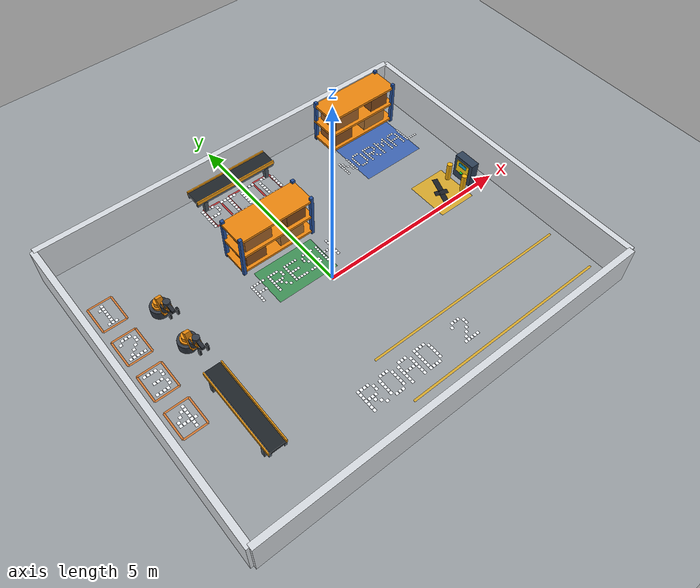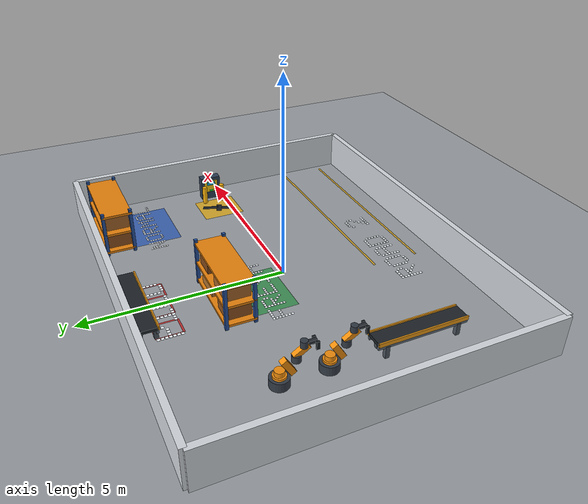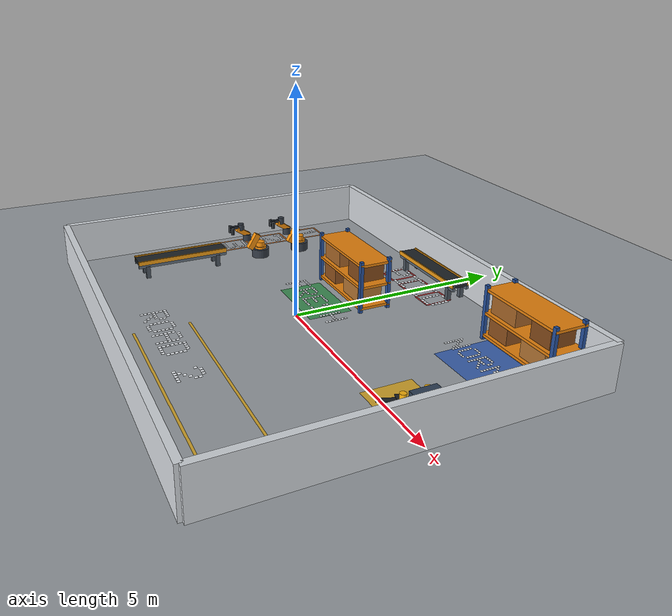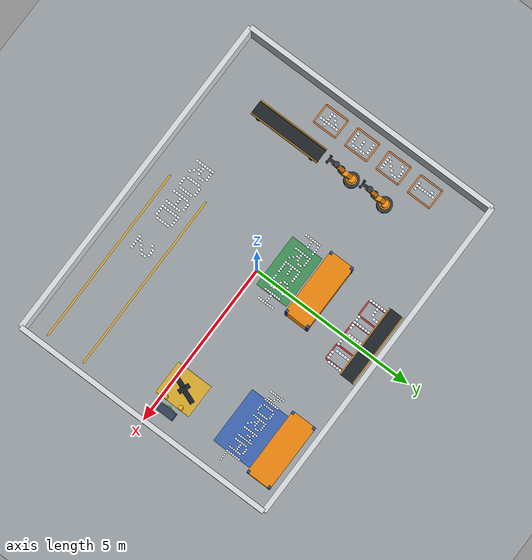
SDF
<?xml version="1.0"?>
<sdf version="1.8">
  <world name="mentorpi_warehouse">
    <physics name="1ms" type="ignored">
      <max_step_size>0.001</max_step_size>
      <real_time_factor>1.0</real_time_factor>
    </physics>

    <plugin filename="gz-sim-physics-system"
            name="gz::sim::systems::Physics"/>
    <plugin filename="gz-sim-user-commands-system"
            name="gz::sim::systems::UserCommands"/>
    <plugin filename="gz-sim-scene-broadcaster-system"
            name="gz::sim::systems::SceneBroadcaster"/>
    <plugin filename="gz-sim-sensors-system"
            name="gz::sim::systems::Sensors">
      <render_engine>ogre2</render_engine>
    </plugin>
    <plugin filename="gz-sim-imu-system"
            name="gz::sim::systems::Imu"/>
    <scene>
      <ambient>0.62 0.64 0.68 1</ambient>
      <background>0.72 0.80 0.88 1</background>
      <shadows>true</shadows>
    </scene>
    <light name="sun" type="directional">
      <cast_shadows>true</cast_shadows>
      <pose>0 0 8 0 0 0</pose>
      <diffuse>0.92 0.92 0.90 1</diffuse>
      <specular>0.25 0.25 0.25 1</specular>
      <attenuation>
        <range>30</range>
        <constant>0.9</constant>
        <linear>0.01</linear>
        <quadratic>0.001</quadratic>
      </attenuation>
      <direction>-0.35 0.25 -1</direction>
    </light>

    <model name="ground">
      <static>true</static>
      <link name="ground_link">
        <collision name="ground_collision">
          <geometry>
            <plane>
              <normal>0 0 1</normal>
              <size>12 10</size>
            </plane>
          </geometry>
          <surface>
            <friction>
              <ode>
                <mu>50</mu>
                <mu2>50</mu2>
              </ode>
            </friction>
          </surface>
        </collision>
        <visual name="ground_visual">
          <geometry>
            <plane>
              <normal>0 0 1</normal>
              <size>12 10</size>
            </plane>
          </geometry>
          <material>
            <ambient>0.48 0.50 0.52 1</ambient>
            <diffuse>0.60 0.62 0.64 1</diffuse>
            <specular>0.08 0.08 0.08 1</specular>
          </material>
        </visual>
      </link>
    </model>

    <model name="warehouse_walls">
      <static>true</static>
      <link name="walls">
        <collision name="north">
          <pose>0 4 0.5 0 0 0</pose>
          <geometry><box><size>10 0.15 1</size></box></geometry>
        </collision>
        <visual name="north_visual">
          <pose>0 4 0.5 0 0 0</pose>
          <geometry><box><size>10 0.15 1</size></box></geometry>
          <material><diffuse>0.84 0.86 0.88 1</diffuse></material>
        </visual>
        <collision name="south">
          <pose>0 -4 0.5 0 0 0</pose>
          <geometry><box><size>10 0.15 1</size></box></geometry>
        </collision>
        <visual name="south_visual">
          <pose>0 -4 0.5 0 0 0</pose>
          <geometry><box><size>10 0.15 1</size></box></geometry>
          <material><diffuse>0.84 0.86 0.88 1</diffuse></material>
        </visual>
        <collision name="east">
          <pose>5 0 0.5 0 0 0</pose>
          <geometry><box><size>0.15 8 1</size></box></geometry>
        </collision>
        <visual name="east_visual">
          <pose>5 0 0.5 0 0 0</pose>
          <geometry><box><size>0.15 8 1</size></box></geometry>
          <material><diffuse>0.84 0.86 0.88 1</diffuse></material>
        </visual>
        <collision name="west">
          <pose>-5 0 0.5 0 0 0</pose>
          <geometry><box><size>0.15 8 1</size></box></geometry>
        </collision>
        <visual name="west_visual">
          <pose>-5 0 0.5 0 0 0</pose>
          <geometry><box><size>0.15 8 1</size></box></geometry>
          <material><diffuse>0.84 0.86 0.88 1</diffuse></material>
        </visual>
      </link>
    </model>

    <include>
      <uri>model://warehouse_conveyor</uri>
      <name>left_conveyor</name>
      <pose>-3.45 -1.55 0 0 0 1.5708</pose>
    </include>
    <include>
      <uri>model://warehouse_conveyor</uri>
      <name>pico_conveyor</name>
      <pose>-0.20 3.64 0 0 0 0</pose>
    </include>

    <include>
      <uri>model://warehouse_robot_arm</uri>
      <name>robot_arm_upper</name>
      <pose>-3.45 1.65 0 0 0 -1.5708</pose>
    </include>
    <include>
      <uri>model://warehouse_robot_arm</uri>
      <name>robot_arm_lower</name>
      <pose>-3.45 0.55 0 0 0 -1.5708</pose>
    </include>

    <include>
      <uri>model://warehouse_charger</uri>
      <name>charging_station</name>
      <pose>4.45 0.35 0 0 0 1.5708</pose>
    </include>

    <include>
      <uri>model://warehouse_rack</uri>
      <name>fresh_rack</name>
      <pose>-0.50 1.67 0 0 0 0</pose>
    </include>
    <include>
      <uri>model://warehouse_rack</uri>
      <name>normal_rack</name>
      <pose>3.45 3.40 0 0 0 0</pose>
    </include>

    <include>
      <uri>model://warehouse_markings</uri>
      <name>floor_markings</name>
      <pose>0 0 0 0 0 0</pose>
    </include>

    <plugin filename="mentorpi_warehouse_pallet_manager"
            name="mentorpi_gz_sim::WarehousePalletManager">
      <command_service>/warehouse/pallet/command</command_service>
      <template_dir>pallet</template_dir>
      <spawn_bounds>-4.5 4.5 -3.5 3.5</spawn_bounds>
      <default_spawn_pose>-2.5 -2.8 0 0 0 0</default_spawn_pose>
      <linear_stop_threshold>0.02</linear_stop_threshold>
      <angular_stop_threshold>0.05</angular_stop_threshold>
      <default_pallet id="pallet_01" kind="fresh" state="loaded"
                      pose="-1.0 0.6 0 0 0 0"/>
      <default_pallet id="pallet_02" kind="fresh" state="loaded"
                      pose="-0.5 0.6 0 0 0 0"/>
      <default_pallet id="pallet_03" kind="fresh" state="loaded"
                      pose="0.0 0.6 0 0 0 0"/>
      <default_pallet id="pallet_04" kind="normal" state="loaded"
                      pose="2.9 2.4 0 0 0 0"/>
      <default_pallet id="pallet_05" kind="normal" state="loaded"
                      pose="3.4 2.4 0 0 0 0"/>
      <default_pallet id="pallet_06" kind="normal" state="loaded"
                      pose="3.9 2.4 0 0 0 0"/>
    </plugin>
  </world>
</sdf>

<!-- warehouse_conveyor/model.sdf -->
<sdf version="1.8">
  <model name="warehouse_conveyor">
    <static>true</static>
    <link name="conveyor">
      <collision name="conveyor_envelope">
        <pose>0 0 0.225 0 0 0</pose>
        <geometry>
          <box>
            <size>2.2 0.45 0.45</size>
          </box>
        </geometry>
      </collision>

      <visual name="belt">
        <pose>0 0 0.39 0 0 0</pose>
        <geometry>
          <box>
            <size>2.2 0.36 0.08</size>
          </box>
        </geometry>
        <material>
          <ambient>0.08 0.10 0.12 1</ambient>
          <diffuse>0.12 0.14 0.16 1</diffuse>
          <specular>0.25 0.25 0.25 1</specular>
        </material>
      </visual>
      <visual name="left_guard">
        <pose>0 0.215 0.40 0 0 0</pose>
        <geometry>
          <box>
            <size>2.2 0.03 0.10</size>
          </box>
        </geometry>
        <material>
          <ambient>0.85 0.50 0.05 1</ambient>
          <diffuse>0.95 0.62 0.08 1</diffuse>
        </material>
      </visual>
      <visual name="right_guard">
        <pose>0 -0.215 0.40 0 0 0</pose>
        <geometry>
          <box>
            <size>2.2 0.03 0.10</size>
          </box>
        </geometry>
        <material>
          <ambient>0.85 0.50 0.05 1</ambient>
          <diffuse>0.95 0.62 0.08 1</diffuse>
        </material>
      </visual>
      <visual name="frame_left">
        <pose>0 0.18 0.31 0 0 0</pose>
        <geometry>
          <box>
            <size>2.2 0.06 0.08</size>
          </box>
        </geometry>
        <material>
          <ambient>0.24 0.28 0.31 1</ambient>
          <diffuse>0.38 0.43 0.48 1</diffuse>
        </material>
      </visual>
      <visual name="frame_right">
        <pose>0 -0.18 0.31 0 0 0</pose>
        <geometry>
          <box>
            <size>2.2 0.06 0.08</size>
          </box>
        </geometry>
        <material>
          <ambient>0.24 0.28 0.31 1</ambient>
          <diffuse>0.38 0.43 0.48 1</diffuse>
        </material>
      </visual>
      <visual name="leg_front_left">
        <pose>0.88 0.17 0.15 0 0 0</pose>
        <geometry>
          <box>
            <size>0.10 0.10 0.30</size>
          </box>
        </geometry>
        <material>
          <diffuse>0.30 0.34 0.38 1</diffuse>
        </material>
      </visual>
      <visual name="leg_front_right">
        <pose>0.88 -0.17 0.15 0 0 0</pose>
        <geometry>
          <box>
            <size>0.10 0.10 0.30</size>
          </box>
        </geometry>
        <material>
          <diffuse>0.30 0.34 0.38 1</diffuse>
        </material>
      </visual>
      <visual name="leg_rear_left">
        <pose>-0.88 0.17 0.15 0 0 0</pose>
        <geometry>
          <box>
            <size>0.10 0.10 0.30</size>
          </box>
        </geometry>
        <material>
          <diffuse>0.30 0.34 0.38 1</diffuse>
        </material>
      </visual>
      <visual name="leg_rear_right">
        <pose>-0.88 -0.17 0.15 0 0 0</pose>
        <geometry>
          <box>
            <size>0.10 0.10 0.30</size>
          </box>
        </geometry>
        <material>
          <diffuse>0.30 0.34 0.38 1</diffuse>
        </material>
      </visual>
    </link>
  </model>
</sdf>

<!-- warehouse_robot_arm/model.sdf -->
<sdf version="1.8">
  <model name="warehouse_robot_arm">
    <static>true</static>
    <link name="base_link">
      <collision name="base_collision">
        <pose>0 0 0.11 0 0 0</pose>
        <geometry>
          <cylinder>
            <radius>0.22</radius>
            <length>0.22</length>
          </cylinder>
        </geometry>
      </collision>
      <visual name="base">
        <pose>0 0 0.11 0 0 0</pose>
        <geometry>
          <cylinder>
            <radius>0.22</radius>
            <length>0.22</length>
          </cylinder>
        </geometry>
        <material>
          <ambient>0.12 0.14 0.17 1</ambient>
          <diffuse>0.20 0.23 0.27 1</diffuse>
        </material>
      </visual>
      <visual name="turntable">
        <pose>0 0 0.235 0 0 0</pose>
        <geometry>
          <cylinder>
            <radius>0.15</radius>
            <length>0.08</length>
          </cylinder>
        </geometry>
        <material>
          <ambient>0.85 0.45 0.03 1</ambient>
          <diffuse>0.95 0.56 0.05 1</diffuse>
        </material>
      </visual>
    </link>

    <link name="shoulder_link">
      <pose>0 0 0.30 0 0 0</pose>
      <collision name="shoulder_collision">
        <pose>0.18 0 0.12 0 1.02 0</pose>
        <geometry>
          <box>
            <size>0.42 0.14 0.14</size>
          </box>
        </geometry>
      </collision>
      <visual name="shoulder_joint">
        <geometry>
          <cylinder>
            <radius>0.11</radius>
            <length>0.18</length>
          </cylinder>
        </geometry>
        <material>
          <diffuse>0.95 0.56 0.05 1</diffuse>
        </material>
      </visual>
      <visual name="shoulder_body">
        <pose>0.18 0 0.12 0 1.02 0</pose>
        <geometry>
          <box>
            <size>0.42 0.14 0.14</size>
          </box>
        </geometry>
        <material>
          <diffuse>0.95 0.56 0.05 1</diffuse>
        </material>
      </visual>
    </link>

    <link name="forearm_link">
      <pose>0.36 0 0.57 0 0 0</pose>
      <collision name="forearm_collision">
        <pose>0.10 0 0.15 0 -0.58 0</pose>
        <geometry>
          <box>
            <size>0.38 0.12 0.12</size>
          </box>
        </geometry>
      </collision>
      <visual name="elbow_joint">
        <geometry>
          <cylinder>
            <radius>0.10</radius>
            <length>0.16</length>
          </cylinder>
        </geometry>
        <material>
          <diffuse>0.20 0.23 0.27 1</diffuse>
        </material>
      </visual>
      <visual name="forearm_body">
        <pose>0.10 0 0.15 0 -0.58 0</pose>
        <geometry>
          <box>
            <size>0.38 0.12 0.12</size>
          </box>
        </geometry>
        <material>
          <diffuse>0.95 0.56 0.05 1</diffuse>
        </material>
      </visual>
    </link>

    <link name="tool_link">
      <pose>0.52 0 0.87 0 0 0</pose>
      <collision name="tool_collision">
        <geometry>
          <box>
            <size>0.34 0.18 0.10</size>
          </box>
        </geometry>
      </collision>
      <visual name="wrist">
        <geometry>
          <cylinder>
            <radius>0.08</radius>
            <length>0.16</length>
          </cylinder>
        </geometry>
        <material>
          <diffuse>0.20 0.23 0.27 1</diffuse>
        </material>
      </visual>
      <visual name="gripper_bar">
        <pose>0.13 0 0 0 0 0</pose>
        <geometry>
          <box>
            <size>0.28 0.08 0.07</size>
          </box>
        </geometry>
        <material>
          <diffuse>0.15 0.17 0.20 1</diffuse>
        </material>
      </visual>
      <visual name="gripper_left">
        <pose>0.25 0.09 -0.06 0 0 0</pose>
        <geometry>
          <box>
            <size>0.07 0.05 0.18</size>
          </box>
        </geometry>
        <material>
          <diffuse>0.10 0.12 0.14 1</diffuse>
        </material>
      </visual>
      <visual name="gripper_right">
        <pose>0.25 -0.09 -0.06 0 0 0</pose>
        <geometry>
          <box>
            <size>0.07 0.05 0.18</size>
          </box>
        </geometry>
        <material>
          <diffuse>0.10 0.12 0.14 1</diffuse>
        </material>
      </visual>
    </link>

    <joint name="base_to_shoulder" type="fixed">
      <parent>base_link</parent>
      <child>shoulder_link</child>
    </joint>
    <joint name="shoulder_to_forearm" type="fixed">
      <parent>shoulder_link</parent>
      <child>forearm_link</child>
    </joint>
    <joint name="forearm_to_tool" type="fixed">
      <parent>forearm_link</parent>
      <child>tool_link</child>
    </joint>
  </model>
</sdf>

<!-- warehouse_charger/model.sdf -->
<sdf version="1.8">
  <model name="warehouse_charger">
    <static>true</static>
    <link name="charger">
      <collision name="cabinet_collision">
        <pose>0 0 0.325 0 0 0</pose>
        <geometry>
          <box>
            <size>0.55 0.22 0.65</size>
          </box>
        </geometry>
      </collision>
      <collision name="left_bollard_collision">
        <pose>0.25 0.31 0.24 0 0 0</pose>
        <geometry>
          <cylinder>
            <radius>0.065</radius>
            <length>0.48</length>
          </cylinder>
        </geometry>
      </collision>
      <collision name="right_bollard_collision">
        <pose>-0.25 0.31 0.24 0 0 0</pose>
        <geometry>
          <cylinder>
            <radius>0.065</radius>
            <length>0.48</length>
          </cylinder>
        </geometry>
      </collision>

      <visual name="cabinet">
        <pose>0 0 0.325 0 0 0</pose>
        <geometry>
          <box>
            <size>0.55 0.22 0.65</size>
          </box>
        </geometry>
        <material>
          <ambient>0.12 0.16 0.22 1</ambient>
          <diffuse>0.18 0.25 0.34 1</diffuse>
        </material>
      </visual>
      <visual name="front_panel">
        <pose>0 0.116 0.39 0 0 0</pose>
        <geometry>
          <box>
            <size>0.38 0.025 0.34</size>
          </box>
        </geometry>
        <material>
          <ambient>0.95 0.72 0.05 1</ambient>
          <diffuse>1.0 0.82 0.08 1</diffuse>
          <emissive>0.18 0.12 0.01 1</emissive>
        </material>
      </visual>
      <visual name="display">
        <pose>0 0.131 0.48 0 0 0</pose>
        <geometry>
          <box>
            <size>0.24 0.012 0.10</size>
          </box>
        </geometry>
        <material>
          <diffuse>0.05 0.65 0.85 1</diffuse>
          <emissive>0.02 0.30 0.45 1</emissive>
        </material>
      </visual>
      <visual name="status_light">
        <pose>0 0.14 0.27 0 0 0</pose>
        <geometry>
          <cylinder>
            <radius>0.045</radius>
            <length>0.025</length>
          </cylinder>
        </geometry>
        <material>
          <diffuse>0.10 0.95 0.25 1</diffuse>
          <emissive>0.04 0.50 0.10 1</emissive>
        </material>
      </visual>
      <visual name="left_bollard">
        <pose>0.25 0.31 0.24 0 0 0</pose>
        <geometry>
          <cylinder>
            <radius>0.065</radius>
            <length>0.48</length>
          </cylinder>
        </geometry>
        <material>
          <diffuse>0.98 0.70 0.04 1</diffuse>
        </material>
      </visual>
      <visual name="right_bollard">
        <pose>-0.25 0.31 0.24 0 0 0</pose>
        <geometry>
          <cylinder>
            <radius>0.065</radius>
            <length>0.48</length>
          </cylinder>
        </geometry>
        <material>
          <diffuse>0.98 0.70 0.04 1</diffuse>
        </material>
      </visual>
    </link>
  </model>
</sdf>

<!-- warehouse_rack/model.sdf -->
<sdf version="1.8">
  <model name="warehouse_rack">
    <static>true</static>
    <link name="rack">
      <collision name="rack_envelope">
        <pose>0 0 0.6 0 0 0</pose>
        <geometry>
          <box>
            <size>2.0 0.75 1.2</size>
          </box>
        </geometry>
      </collision>

      <visual name="post_front_left">
        <pose>-0.96 -0.34 0.6 0 0 0</pose>
        <geometry><box><size>0.08 0.08 1.2</size></box></geometry>
        <material><diffuse>0.15 0.32 0.62 1</diffuse></material>
      </visual>
      <visual name="post_front_right">
        <pose>0.96 -0.34 0.6 0 0 0</pose>
        <geometry><box><size>0.08 0.08 1.2</size></box></geometry>
        <material><diffuse>0.15 0.32 0.62 1</diffuse></material>
      </visual>
      <visual name="post_rear_left">
        <pose>-0.96 0.34 0.6 0 0 0</pose>
        <geometry><box><size>0.08 0.08 1.2</size></box></geometry>
        <material><diffuse>0.15 0.32 0.62 1</diffuse></material>
      </visual>
      <visual name="post_rear_right">
        <pose>0.96 0.34 0.6 0 0 0</pose>
        <geometry><box><size>0.08 0.08 1.2</size></box></geometry>
        <material><diffuse>0.15 0.32 0.62 1</diffuse></material>
      </visual>

      <visual name="shelf_lower">
        <pose>0 0 0.10 0 0 0</pose>
        <geometry><box><size>2.0 0.75 0.06</size></box></geometry>
        <material><diffuse>0.92 0.52 0.05 1</diffuse></material>
      </visual>
      <visual name="shelf_middle">
        <pose>0 0 0.59 0 0 0</pose>
        <geometry><box><size>2.0 0.75 0.06</size></box></geometry>
        <material><diffuse>0.92 0.52 0.05 1</diffuse></material>
      </visual>
      <visual name="shelf_upper">
        <pose>0 0 1.10 0 0 0</pose>
        <geometry><box><size>2.0 0.75 0.06</size></box></geometry>
        <material><diffuse>0.92 0.52 0.05 1</diffuse></material>
      </visual>

      <visual name="carton_lower_left">
        <pose>-0.58 0 0.34 0 0 0</pose>
        <geometry><box><size>0.54 0.60 0.40</size></box></geometry>
        <material><diffuse>0.56 0.32 0.12 1</diffuse></material>
      </visual>
      <visual name="carton_lower_right">
        <pose>0.42 0 0.34 0 0 0</pose>
        <geometry><box><size>0.66 0.60 0.40</size></box></geometry>
        <material><diffuse>0.70 0.46 0.20 1</diffuse></material>
      </visual>
      <visual name="carton_upper_left">
        <pose>-0.48 0 0.84 0 0 0</pose>
        <geometry><box><size>0.72 0.60 0.40</size></box></geometry>
        <material><diffuse>0.66 0.40 0.16 1</diffuse></material>
      </visual>
      <visual name="carton_upper_right">
        <pose>0.56 0 0.84 0 0 0</pose>
        <geometry><box><size>0.52 0.60 0.40</size></box></geometry>
        <material><diffuse>0.52 0.29 0.10 1</diffuse></material>
      </visual>
    </link>
  </model>
</sdf>
